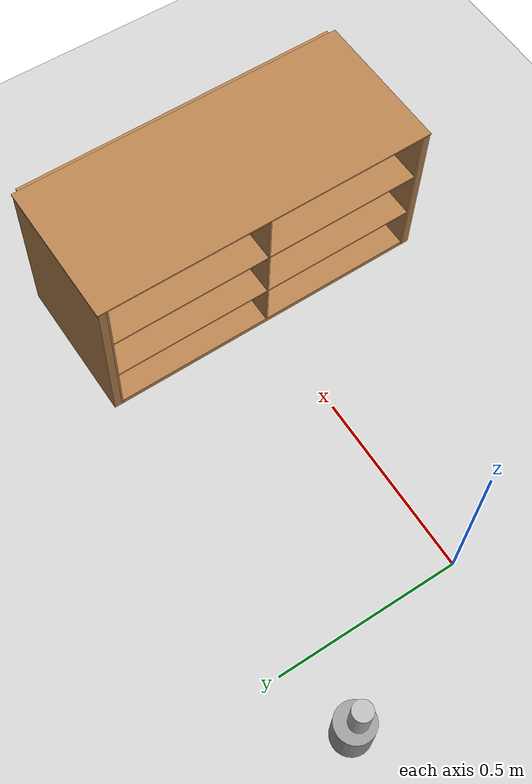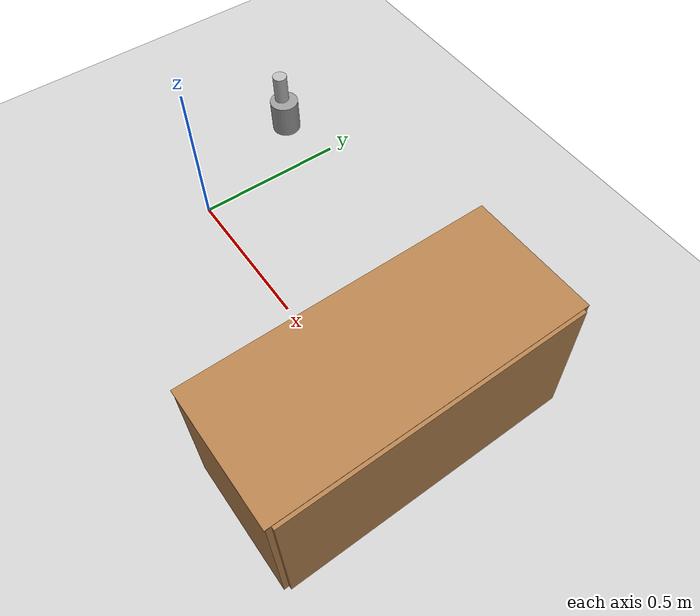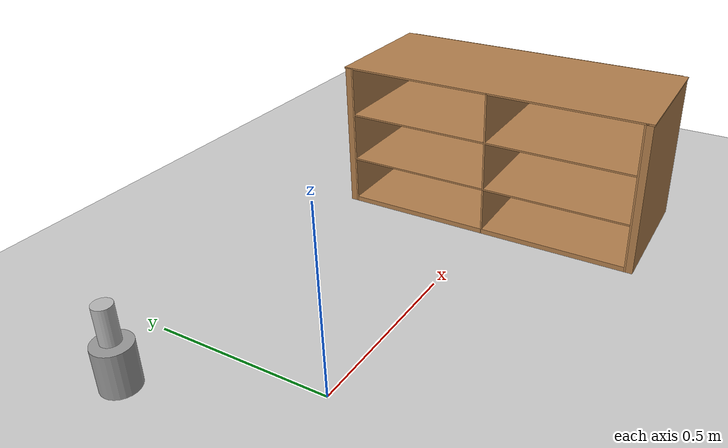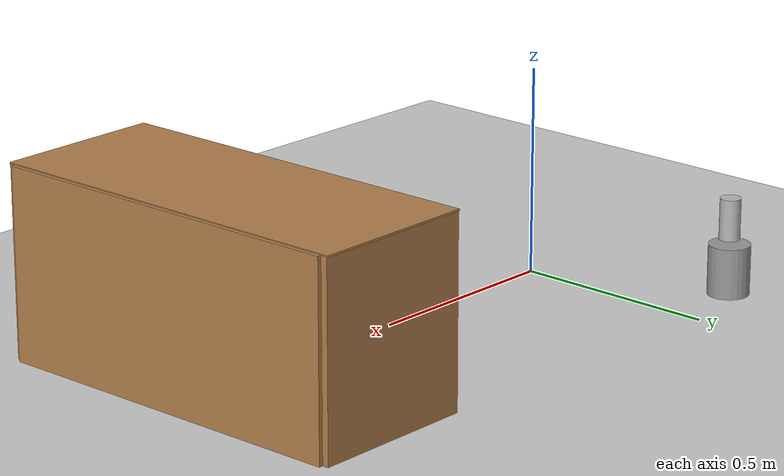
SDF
<sdf version="1.4">
  <world name="default">

    <!-- Global world -->
    <include>
      <uri>model://ground_plane</uri>
    </include>

    <!-- Global light source -->
    <include>
      <uri>model://sun</uri>
    </include>

    <physics type="ode">
      <real_time_update_rate>1000.0</real_time_update_rate>
      <max_step_size>0.001</max_step_size>
      <real_time_factor>1</real_time_factor>
      <ode>
        <solver>
          <type>quick</type>
          <iters>150</iters>
          <precon_iters>0</precon_iters>
          <sor>1.400000</sor>
          <use_dynamic_moi_rescaling>1</use_dynamic_moi_rescaling>
        </solver>
        <constraints>
          <cfm>0.00001</cfm>
          <erp>0.2</erp>
          <contact_max_correcting_vel>2000.000000</contact_max_correcting_vel>
          <contact_surface_layer>0.01000</contact_surface_layer>
        </constraints>
      </ode>
    </physics>

    <!-- Load world -->
    <include>
      <uri>model://turtlebot3_rooms3</uri>
    </include>

    <scene>
      <ambient>0.4 0.4 0.4 1</ambient>
      <background>0.7 0.7 0.7 1</background>
      <shadows>true</shadows>
    </scene>

    <gui fullscreen='0'>
      <camera name='user_camera'>
        <pose>0.8 2.0 12.0 0 1.5708 1.5708</pose>
        <view_controller>orbit</view_controller>
      </camera>
    </gui>

   <light name='user_spot_light_0' type='spot'>
      <pose frame=''>0 -4.5 1.373 1.65 -0 0</pose>
      <diffuse>0.5 0.5 0.5 1</diffuse>
      <specular>0.1 0.1 0.1 1</specular>
      <direction>0 0 -1</direction>
      <attenuation>
        <range>20</range>
        <constant>0.5</constant>
        <linear>0.01</linear>
        <quadratic>0.001</quadratic>
      </attenuation>
      <cast_shadows>0</cast_shadows>
      <spot>
        <inner_angle>0.6</inner_angle>
        <outer_angle>1</outer_angle>
        <falloff>1</falloff>
      </spot>
    </light>

  </world>
</sdf>

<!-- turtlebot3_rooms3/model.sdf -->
<sdf version='1.6'>
  <model name='turtlebot3_rooms3'>
    <link name='link_1'>
      <pose frame=''>-0.19418 0.435932 0.02 0 -0 0</pose>
      <inertial>
        <mass>1</mass>
        <inertia>
          <ixx>0.145833</ixx>
          <ixy>0</ixy>
          <ixz>0</ixz>
          <iyy>0.145833</iyy>
          <iyz>0</iyz>
          <izz>0.125</izz>
        </inertia>
      </inertial>
      <self_collide>0</self_collide>
      <kinematic>0</kinematic>
      <visual name='visual'>
        <pose frame=''>0 0 0 0 -0 0</pose>
        <geometry>
          <cylinder>
            <radius>0.05</radius>
            <length>0.2</length>
          </cylinder>
        </geometry>
        <material>
          <lighting>1</lighting>
          <script>
            <uri>file://media/materials/scripts/gazebo.material</uri>
            <name>Gazebo/Grey</name>
          </script>
          <shader type='pixel'/>
          <ambient>0.3 0.3 0.3 1</ambient>
          <diffuse>0.7 0.7 0.7 1</diffuse>
          <specular>0.01 0.01 0.01 1</specular>
          <emissive>0 0 0 1</emissive>
        </material>
        <transparency>0</transparency>
        <cast_shadows>1</cast_shadows>
      </visual>
      <collision name='collision'>
        <laser_retro>0</laser_retro>
        <max_contacts>10</max_contacts>
        <pose frame=''>0 0 0 0 -0 0</pose>
        <geometry>
          <cylinder>
            <radius>0.05</radius>
            <length>0.2</length>
          </cylinder>
        </geometry>
        <surface>
          <friction>
            <ode>
              <mu>1</mu>
              <mu2>1</mu2>
              <fdir1>0 0 0</fdir1>
              <slip1>0</slip1>
              <slip2>0</slip2>
            </ode>
            <torsional>
              <coefficient>1</coefficient>
              <patch_radius>0</patch_radius>
              <surface_radius>0</surface_radius>
              <use_patch_radius>1</use_patch_radius>
              <ode>
                <slip>0</slip>
              </ode>
            </torsional>
          </friction>
          <bounce>
            <restitution_coefficient>0</restitution_coefficient>
            <threshold>1e+06</threshold>
          </bounce>
          <contact>
            <collide_without_contact>0</collide_without_contact>
            <collide_without_contact_bitmask>1</collide_without_contact_bitmask>
            <collide_bitmask>1</collide_bitmask>
            <ode>
              <soft_cfm>0</soft_cfm>
              <soft_erp>0.2</soft_erp>
              <kp>1e+13</kp>
              <kd>1</kd>
              <max_vel>0.01</max_vel>
              <min_depth>0</min_depth>
            </ode>
            <bullet>
              <split_impulse>1</split_impulse>
              <split_impulse_penetration_threshold>-0.01</split_impulse_penetration_threshold>
              <soft_cfm>0</soft_cfm>
              <soft_erp>0.2</soft_erp>
              <kp>1e+13</kp>
              <kd>1</kd>
            </bullet>
          </contact>
        </surface>
      </collision>
      <static>1</static>
    </link>
    <model name='bookshelf_i_0'>
      <link name='link'>
        <pose frame=''>0 0 0 0 0 -1.56022</pose>
        <inertial>
          <mass>1</mass>
        </inertial>
        <self_collide>0</self_collide>
        <kinematic>0</kinematic>
        <visual name='right_side'>
          <pose frame=''>-0.455 -0.195 0.225 0 -0 0</pose>
          <geometry>
            <box>
              <size>0.02 0.4 0.45</size>
            </box>
          </geometry>
          <material>
            <script>
              <uri>file://media/materials/scripts/gazebo.material</uri>
              <name>Gazebo/Wood</name>
            </script>
            <shader type='pixel'/>
            <ambient>1 1 1 1</ambient>
            <diffuse>1 1 1 1</diffuse>
            <specular>0 0 0 1</specular>
            <emissive>0 0 0 1</emissive>
          </material>
          <transparency>0</transparency>
          <cast_shadows>1</cast_shadows>
        </visual>
        <visual name='left_side_inner'>
          <pose frame=''>0.4425 -0.195 0.225 0 -0 0</pose>
          <geometry>
            <box>
              <size>0.005 0.4 0.45</size>
            </box>
          </geometry>
          <material>
            <script>
              <uri>file://media/materials/scripts/gazebo.material</uri>
              <name>Gazebo/Wood</name>
            </script>
            <shader type='pixel'/>
            <ambient>1 1 1 1</ambient>
            <diffuse>1 1 1 1</diffuse>
            <specular>0.2 0.2 0.2 1</specular>
            <emissive>0 0 0 1</emissive>
          </material>
          <transparency>0</transparency>
          <cast_shadows>1</cast_shadows>
        </visual>
        <visual name='bottom'>
          <pose frame=''>0 -0.195 0.0075 0 -0 0</pose>
          <geometry>
            <box>
              <size>0.88 0.4 0.015</size>
            </box>
          </geometry>
          <material>
            <script>
              <uri>file://media/materials/scripts/gazebo.material</uri>
              <name>Gazebo/Wood</name>
            </script>
            <shader type='pixel'/>
            <ambient>1 1 1 1</ambient>
            <diffuse>1 1 1 1</diffuse>
            <specular>0.2 0.2 0.2 1</specular>
            <emissive>0 0 0 1</emissive>
          </material>
          <transparency>0</transparency>
          <cast_shadows>1</cast_shadows>
        </visual>
        <visual name='low_shelf'>
          <pose frame=''>0 -0.195 0.15 0 -0 0</pose>
          <geometry>
            <box>
              <size>0.88 0.4 0.005</size>
            </box>
          </geometry>
          <material>
            <script>
              <uri>file://media/materials/scripts/gazebo.material</uri>
              <name>Gazebo/Wood</name>
            </script>
            <shader type='pixel'/>
            <ambient>1 1 1 1</ambient>
            <diffuse>1 1 1 1</diffuse>
            <specular>0.2 0.2 0.2 1</specular>
            <emissive>0 0 0 1</emissive>
          </material>
          <transparency>0</transparency>
          <cast_shadows>1</cast_shadows>
        </visual>
        <visual name='back'>
          <pose frame=''>0 0.01 0.225 0 -0 0</pose>
          <geometry>
            <box>
              <size>0.9 0.01 0.45</size>
            </box>
          </geometry>
          <material>
            <script>
              <uri>file://media/materials/scripts/gazebo.material</uri>
              <name>Gazebo/Wood</name>
            </script>
            <shader type='pixel'/>
            <ambient>1 1 1 1</ambient>
            <diffuse>1 1 1 1</diffuse>
            <specular>0.2 0.2 0.2 1</specular>
            <emissive>0 0 0 1</emissive>
          </material>
          <transparency>0</transparency>
          <cast_shadows>1</cast_shadows>
        </visual>
        <visual name='top'>
          <pose frame=''>0 -0.195 0.45 0 -0 0</pose>
          <geometry>
            <box>
              <size>0.935 0.4 0.005</size>
            </box>
          </geometry>
          <material>
            <script>
              <uri>file://media/materials/scripts/gazebo.material</uri>
              <name>Gazebo/Wood</name>
            </script>
            <shader type='pixel'/>
            <ambient>1 1 1 1</ambient>
            <diffuse>1 1 1 1</diffuse>
            <specular>0.2 0.2 0.2 1</specular>
            <emissive>0 0 0 1</emissive>
          </material>
          <transparency>0</transparency>
          <cast_shadows>1</cast_shadows>
        </visual>
        <visual name='right_side_inner'>
          <pose frame=''>-0.4425 -0.195 0.225 0 -0 0</pose>
          <geometry>
            <box>
              <size>0.005 0.4 0.45</size>
            </box>
          </geometry>
          <material>
            <script>
              <uri>file://media/materials/scripts/gazebo.material</uri>
              <name>Gazebo/Wood</name>
            </script>
            <shader type='pixel'/>
            <ambient>1 1 1 1</ambient>
            <diffuse>1 1 1 1</diffuse>
            <specular>0.2 0.2 0.2 1</specular>
            <emissive>0 0 0 1</emissive>
          </material>
          <transparency>0</transparency>
          <cast_shadows>1</cast_shadows>
        </visual>
        <visual name='high_shelf'>
          <pose frame=''>0 -0.195 0.3 0 -0 0</pose>
          <geometry>
            <box>
              <size>0.88 0.4 0.005</size>
            </box>
          </geometry>
          <material>
            <script>
              <uri>file://media/materials/scripts/gazebo.material</uri>
              <name>Gazebo/Wood</name>
            </script>
            <shader type='pixel'/>
            <ambient>1 1 1 1</ambient>
            <diffuse>1 1 1 1</diffuse>
            <specular>0.2 0.2 0.2 1</specular>
            <emissive>0 0 0 1</emissive>
          </material>
          <transparency>0</transparency>
          <cast_shadows>1</cast_shadows>
        </visual>
        <visual name='left_side'>
          <pose frame=''>0.455 -0.195 0.225 0 -0 0</pose>
          <geometry>
            <box>
              <size>0.02 0.4 0.45</size>
            </box>
          </geometry>
          <material>
            <script>
              <uri>file://media/materials/scripts/gazebo.material</uri>
              <name>Gazebo/Wood</name>
            </script>
            <shader type='pixel'/>
            <ambient>1 1 1 1</ambient>
            <diffuse>1 1 1 1</diffuse>
            <specular>0 0 0 1</specular>
            <emissive>0 0 0 1</emissive>
          </material>
          <transparency>0</transparency>
          <cast_shadows>1</cast_shadows>
        </visual>
        <visual name='right_side_center'>
          <pose frame=''>0 -0.195 0.225 0 -0 0</pose>
          <geometry>
            <box>
              <size>0.005 0.4 0.45</size>
            </box>
          </geometry>
          <material>
            <script>
              <uri>file://media/materials/scripts/gazebo.material</uri>
              <name>Gazebo/Wood</name>
            </script>
            <shader type='pixel'/>
            <ambient>1 1 1 1</ambient>
            <diffuse>1 1 1 1</diffuse>
            <specular>0.2 0.2 0.2 1</specular>
            <emissive>0 0 0 1</emissive>
          </material>
          <transparency>0</transparency>
          <cast_shadows>1</cast_shadows>
        </visual>
        <collision name='top'>
          <laser_retro>0</laser_retro>
          <max_contacts>10</max_contacts>
          <pose frame=''>0 -0.195 0.45 0 -0 0</pose>
          <geometry>
            <box>
              <size>0.935 0.4 0.005</size>
            </box>
          </geometry>
          <surface>
            <friction>
              <ode>
                <mu>1</mu>
                <mu2>1</mu2>
                <fdir1>0 0 0</fdir1>
                <slip1>0</slip1>
                <slip2>0</slip2>
              </ode>
              <torsional>
                <coefficient>1</coefficient>
                <patch_radius>0</patch_radius>
                <surface_radius>0</surface_radius>
                <use_patch_radius>1</use_patch_radius>
                <ode>
                  <slip>0</slip>
                </ode>
              </torsional>
            </friction>
            <bounce>
              <restitution_coefficient>0</restitution_coefficient>
              <threshold>1e+06</threshold>
            </bounce>
            <contact>
              <collide_without_contact>0</collide_without_contact>
              <collide_without_contact_bitmask>1</collide_without_contact_bitmask>
              <collide_bitmask>1</collide_bitmask>
              <ode>
                <soft_cfm>0</soft_cfm>
                <soft_erp>0.2</soft_erp>
                <kp>1e+13</kp>
                <kd>1</kd>
                <max_vel>0.01</max_vel>
                <min_depth>0</min_depth>
              </ode>
              <bullet>
                <split_impulse>1</split_impulse>
                <split_impulse_penetration_threshold>-0.01</split_impulse_penetration_threshold>
                <soft_cfm>0</soft_cfm>
                <soft_erp>0.2</soft_erp>
                <kp>1e+13</kp>
                <kd>1</kd>
              </bullet>
            </contact>
          </surface>
        </collision>
        <collision name='right_side_center'>
          <laser_retro>0</laser_retro>
          <max_contacts>10</max_contacts>
          <pose frame=''>0 -0.195 0.225 0 -0 0</pose>
          <geometry>
            <box>
              <size>0.005 0.4 0.45</size>
            </box>
          </geometry>
          <surface>
            <friction>
              <ode>
                <mu>1</mu>
                <mu2>1</mu2>
                <fdir1>0 0 0</fdir1>
                <slip1>0</slip1>
                <slip2>0</slip2>
              </ode>
              <torsional>
                <coefficient>1</coefficient>
                <patch_radius>0</patch_radius>
                <surface_radius>0</surface_radius>
                <use_patch_radius>1</use_patch_radius>
                <ode>
                  <slip>0</slip>
                </ode>
              </torsional>
            </friction>
            <bounce>
              <restitution_coefficient>0</restitution_coefficient>
              <threshold>1e+06</threshold>
            </bounce>
            <contact>
              <collide_without_contact>0</collide_without_contact>
              <collide_without_contact_bitmask>1</collide_without_contact_bitmask>
              <collide_bitmask>1</collide_bitmask>
              <ode>
                <soft_cfm>0</soft_cfm>
                <soft_erp>0.2</soft_erp>
                <kp>1e+13</kp>
                <kd>1</kd>
                <max_vel>0.01</max_vel>
                <min_depth>0</min_depth>
              </ode>
              <bullet>
                <split_impulse>1</split_impulse>
                <split_impulse_penetration_threshold>-0.01</split_impulse_penetration_threshold>
                <soft_cfm>0</soft_cfm>
                <soft_erp>0.2</soft_erp>
                <kp>1e+13</kp>
                <kd>1</kd>
              </bullet>
            </contact>
          </surface>
        </collision>
        <collision name='back'>
          <laser_retro>0</laser_retro>
          <max_contacts>10</max_contacts>
          <pose frame=''>0 0.01 0.225 0 -0 0</pose>
          <geometry>
            <box>
              <size>0.9 0.01 0.45</size>
            </box>
          </geometry>
          <surface>
            <friction>
              <ode>
                <mu>1</mu>
                <mu2>1</mu2>
                <fdir1>0 0 0</fdir1>
                <slip1>0</slip1>
                <slip2>0</slip2>
              </ode>
              <torsional>
                <coefficient>1</coefficient>
                <patch_radius>0</patch_radius>
                <surface_radius>0</surface_radius>
                <use_patch_radius>1</use_patch_radius>
                <ode>
                  <slip>0</slip>
                </ode>
              </torsional>
            </friction>
            <bounce>
              <restitution_coefficient>0</restitution_coefficient>
              <threshold>1e+06</threshold>
            </bounce>
            <contact>
              <collide_without_contact>0</collide_without_contact>
              <collide_without_contact_bitmask>1</collide_without_contact_bitmask>
              <collide_bitmask>1</collide_bitmask>
              <ode>
                <soft_cfm>0</soft_cfm>
                <soft_erp>0.2</soft_erp>
                <kp>1e+13</kp>
                <kd>1</kd>
                <max_vel>0.01</max_vel>
                <min_depth>0</min_depth>
              </ode>
              <bullet>
                <split_impulse>1</split_impulse>
                <split_impulse_penetration_threshold>-0.01</split_impulse_penetration_threshold>
                <soft_cfm>0</soft_cfm>
                <soft_erp>0.2</soft_erp>
                <kp>1e+13</kp>
                <kd>1</kd>
              </bullet>
            </contact>
          </surface>
        </collision>
        <collision name='right_side_inner'>
          <laser_retro>0</laser_retro>
          <max_contacts>10</max_contacts>
          <pose frame=''>-0.4425 -0.195 0.225 0 -0 0</pose>
          <geometry>
            <box>
              <size>0.005 0.4 0.45</size>
            </box>
          </geometry>
          <surface>
            <friction>
              <ode>
                <mu>1</mu>
                <mu2>1</mu2>
                <fdir1>0 0 0</fdir1>
                <slip1>0</slip1>
                <slip2>0</slip2>
              </ode>
              <torsional>
                <coefficient>1</coefficient>
                <patch_radius>0</patch_radius>
                <surface_radius>0</surface_radius>
                <use_patch_radius>1</use_patch_radius>
                <ode>
                  <slip>0</slip>
                </ode>
              </torsional>
            </friction>
            <bounce>
              <restitution_coefficient>0</restitution_coefficient>
              <threshold>1e+06</threshold>
            </bounce>
            <contact>
              <collide_without_contact>0</collide_without_contact>
              <collide_without_contact_bitmask>1</collide_without_contact_bitmask>
              <collide_bitmask>1</collide_bitmask>
              <ode>
                <soft_cfm>0</soft_cfm>
                <soft_erp>0.2</soft_erp>
                <kp>1e+13</kp>
                <kd>1</kd>
                <max_vel>0.01</max_vel>
                <min_depth>0</min_depth>
              </ode>
              <bullet>
                <split_impulse>1</split_impulse>
                <split_impulse_penetration_threshold>-0.01</split_impulse_penetration_threshold>
                <soft_cfm>0</soft_cfm>
                <soft_erp>0.2</soft_erp>
                <kp>1e+13</kp>
                <kd>1</kd>
              </bullet>
            </contact>
          </surface>
        </collision>
        <collision name='bottom'>
          <laser_retro>0</laser_retro>
          <max_contacts>10</max_contacts>
          <pose frame=''>0 -0.195 0.0075 0 -0 0</pose>
          <geometry>
            <box>
              <size>0.88 0.4 0.015</size>
            </box>
          </geometry>
          <surface>
            <friction>
              <ode>
                <mu>1</mu>
                <mu2>1</mu2>
                <fdir1>0 0 0</fdir1>
                <slip1>0</slip1>
                <slip2>0</slip2>
              </ode>
              <torsional>
                <coefficient>1</coefficient>
                <patch_radius>0</patch_radius>
                <surface_radius>0</surface_radius>
                <use_patch_radius>1</use_patch_radius>
                <ode>
                  <slip>0</slip>
                </ode>
              </torsional>
            </friction>
            <bounce>
              <restitution_coefficient>0</restitution_coefficient>
              <threshold>1e+06</threshold>
            </bounce>
            <contact>
              <collide_without_contact>0</collide_without_contact>
              <collide_without_contact_bitmask>1</collide_without_contact_bitmask>
              <collide_bitmask>1</collide_bitmask>
              <ode>
                <soft_cfm>0</soft_cfm>
                <soft_erp>0.2</soft_erp>
                <kp>1e+13</kp>
                <kd>1</kd>
                <max_vel>0.01</max_vel>
                <min_depth>0</min_depth>
              </ode>
              <bullet>
                <split_impulse>1</split_impulse>
                <split_impulse_penetration_threshold>-0.01</split_impulse_penetration_threshold>
                <soft_cfm>0</soft_cfm>
                <soft_erp>0.2</soft_erp>
                <kp>1e+13</kp>
                <kd>1</kd>
              </bullet>
            </contact>
          </surface>
        </collision>
        <collision name='low_shelf'>
          <laser_retro>0</laser_retro>
          <max_contacts>10</max_contacts>
          <pose frame=''>0 -0.195 0.15 0 -0 0</pose>
          <geometry>
            <box>
              <size>0.88 0.4 0.005</size>
            </box>
          </geometry>
          <surface>
            <friction>
              <ode>
                <mu>1</mu>
                <mu2>1</mu2>
                <fdir1>0 0 0</fdir1>
                <slip1>0</slip1>
                <slip2>0</slip2>
              </ode>
              <torsional>
                <coefficient>1</coefficient>
                <patch_radius>0</patch_radius>
                <surface_radius>0</surface_radius>
                <use_patch_radius>1</use_patch_radius>
                <ode>
                  <slip>0</slip>
                </ode>
              </torsional>
            </friction>
            <bounce>
              <restitution_coefficient>0</restitution_coefficient>
              <threshold>1e+06</threshold>
            </bounce>
            <contact>
              <collide_without_contact>0</collide_without_contact>
              <collide_without_contact_bitmask>1</collide_without_contact_bitmask>
              <collide_bitmask>1</collide_bitmask>
              <ode>
                <soft_cfm>0</soft_cfm>
                <soft_erp>0.2</soft_erp>
                <kp>1e+13</kp>
                <kd>1</kd>
                <max_vel>0.01</max_vel>
                <min_depth>0</min_depth>
              </ode>
              <bullet>
                <split_impulse>1</split_impulse>
                <split_impulse_penetration_threshold>-0.01</split_impulse_penetration_threshold>
                <soft_cfm>0</soft_cfm>
                <soft_erp>0.2</soft_erp>
                <kp>1e+13</kp>
                <kd>1</kd>
              </bullet>
            </contact>
          </surface>
        </collision>
        <collision name='high_shelf'>
          <laser_retro>0</laser_retro>
          <max_contacts>10</max_contacts>
          <pose frame=''>0 -0.195 0.3 0 -0 0</pose>
          <geometry>
            <box>
              <size>0.88 0.4 0.005</size>
            </box>
          </geometry>
          <surface>
            <friction>
              <ode>
                <mu>1</mu>
                <mu2>1</mu2>
                <fdir1>0 0 0</fdir1>
                <slip1>0</slip1>
                <slip2>0</slip2>
              </ode>
              <torsional>
                <coefficient>1</coefficient>
                <patch_radius>0</patch_radius>
                <surface_radius>0</surface_radius>
                <use_patch_radius>1</use_patch_radius>
                <ode>
                  <slip>0</slip>
                </ode>
              </torsional>
            </friction>
            <bounce>
              <restitution_coefficient>0</restitution_coefficient>
              <threshold>1e+06</threshold>
            </bounce>
            <contact>
              <collide_without_contact>0</collide_without_contact>
              <collide_without_contact_bitmask>1</collide_without_contact_bitmask>
              <collide_bitmask>1</collide_bitmask>
              <ode>
                <soft_cfm>0</soft_cfm>
                <soft_erp>0.2</soft_erp>
                <kp>1e+13</kp>
                <kd>1</kd>
                <max_vel>0.01</max_vel>
                <min_depth>0</min_depth>
              </ode>
              <bullet>
                <split_impulse>1</split_impulse>
                <split_impulse_penetration_threshold>-0.01</split_impulse_penetration_threshold>
                <soft_cfm>0</soft_cfm>
                <soft_erp>0.2</soft_erp>
                <kp>1e+13</kp>
                <kd>1</kd>
              </bullet>
            </contact>
          </surface>
        </collision>
        <collision name='left_side_inner'>
          <laser_retro>0</laser_retro>
          <max_contacts>10</max_contacts>
          <pose frame=''>0.4425 -0.195 0.225 0 -0 0</pose>
          <geometry>
            <box>
              <size>0.005 0.4 0.45</size>
            </box>
          </geometry>
          <surface>
            <friction>
              <ode>
                <mu>1</mu>
                <mu2>1</mu2>
                <fdir1>0 0 0</fdir1>
                <slip1>0</slip1>
                <slip2>0</slip2>
              </ode>
              <torsional>
                <coefficient>1</coefficient>
                <patch_radius>0</patch_radius>
                <surface_radius>0</surface_radius>
                <use_patch_radius>1</use_patch_radius>
                <ode>
                  <slip>0</slip>
                </ode>
              </torsional>
            </friction>
            <bounce>
              <restitution_coefficient>0</restitution_coefficient>
              <threshold>1e+06</threshold>
            </bounce>
            <contact>
              <collide_without_contact>0</collide_without_contact>
              <collide_without_contact_bitmask>1</collide_without_contact_bitmask>
              <collide_bitmask>1</collide_bitmask>
              <ode>
                <soft_cfm>0</soft_cfm>
                <soft_erp>0.2</soft_erp>
                <kp>1e+13</kp>
                <kd>1</kd>
                <max_vel>0.01</max_vel>
                <min_depth>0</min_depth>
              </ode>
              <bullet>
                <split_impulse>1</split_impulse>
                <split_impulse_penetration_threshold>-0.01</split_impulse_penetration_threshold>
                <soft_cfm>0</soft_cfm>
                <soft_erp>0.2</soft_erp>
                <kp>1e+13</kp>
                <kd>1</kd>
              </bullet>
            </contact>
          </surface>
        </collision>
        <collision name='right_side'>
          <laser_retro>0</laser_retro>
          <max_contacts>10</max_contacts>
          <pose frame=''>-0.455 -0.195 0.225 0 -0 0</pose>
          <geometry>
            <box>
              <size>0.02 0.4 0.45</size>
            </box>
          </geometry>
          <surface>
            <friction>
              <ode>
                <mu>1</mu>
                <mu2>1</mu2>
                <fdir1>0 0 0</fdir1>
                <slip1>0</slip1>
                <slip2>0</slip2>
              </ode>
              <torsional>
                <coefficient>1</coefficient>
                <patch_radius>0</patch_radius>
                <surface_radius>0</surface_radius>
                <use_patch_radius>1</use_patch_radius>
                <ode>
                  <slip>0</slip>
                </ode>
              </torsional>
            </friction>
            <bounce>
              <restitution_coefficient>0</restitution_coefficient>
              <threshold>1e+06</threshold>
            </bounce>
            <contact>
              <collide_without_contact>0</collide_without_contact>
              <collide_without_contact_bitmask>1</collide_without_contact_bitmask>
              <collide_bitmask>1</collide_bitmask>
              <ode>
                <soft_cfm>0</soft_cfm>
                <soft_erp>0.2</soft_erp>
                <kp>1e+13</kp>
                <kd>1</kd>
                <max_vel>0.01</max_vel>
                <min_depth>0</min_depth>
              </ode>
              <bullet>
                <split_impulse>1</split_impulse>
                <split_impulse_penetration_threshold>-0.01</split_impulse_penetration_threshold>
                <soft_cfm>0</soft_cfm>
                <soft_erp>0.2</soft_erp>
                <kp>1e+13</kp>
                <kd>1</kd>
              </bullet>
            </contact>
          </surface>
        </collision>
        <collision name='left_side'>
          <laser_retro>0</laser_retro>
          <max_contacts>10</max_contacts>
          <pose frame=''>0.455 -0.195 0.225 0 -0 0</pose>
          <geometry>
            <box>
              <size>0.02 0.4 0.45</size>
            </box>
          </geometry>
          <surface>
            <friction>
              <ode>
                <mu>1</mu>
                <mu2>1</mu2>
                <fdir1>0 0 0</fdir1>
                <slip1>0</slip1>
                <slip2>0</slip2>
              </ode>
              <torsional>
                <coefficient>1</coefficient>
                <patch_radius>0</patch_radius>
                <surface_radius>0</surface_radius>
                <use_patch_radius>1</use_patch_radius>
                <ode>
                  <slip>0</slip>
                </ode>
              </torsional>
            </friction>
            <bounce>
              <restitution_coefficient>0</restitution_coefficient>
              <threshold>1e+06</threshold>
            </bounce>
            <contact>
              <collide_without_contact>0</collide_without_contact>
              <collide_without_contact_bitmask>1</collide_without_contact_bitmask>
              <collide_bitmask>1</collide_bitmask>
              <ode>
                <soft_cfm>0</soft_cfm>
                <soft_erp>0.2</soft_erp>
                <kp>1e+13</kp>
                <kd>1</kd>
                <max_vel>0.01</max_vel>
                <min_depth>0</min_depth>
              </ode>
              <bullet>
                <split_impulse>1</split_impulse>
                <split_impulse_penetration_threshold>-0.01</split_impulse_penetration_threshold>
                <soft_cfm>0</soft_cfm>
                <soft_erp>0.2</soft_erp>
                <kp>1e+13</kp>
                <kd>1</kd>
              </bullet>
            </contact>
          </surface>
        </collision>
      </link>
      <static>1</static>
      <allow_auto_disable>1</allow_auto_disable>
      <pose frame=''>1.19738 0.00541 0 0 -0 0</pose>
    </model>
    <model name='small_beer'>
      <link name='link'>
        <pose frame=''>0.2 0 0 0 -0 1.775</pose>
        <inertial>
          <mass>0.001</mass>
          <inertia>
            <ixx>4.7583e-05</ixx>
            <ixy>0</ixy>
            <ixz>0</ixz>
            <iyy>4.7583e-05</iyy>
            <iyz>0</iyz>
            <izz>3.125e-06</izz>
          </inertia>
        </inertial>
        <collision name='collision'>
          <geometry>
            <cylinder>
              <radius>0.025</radius>
	      <length>0.1</length>
            </cylinder>
          </geometry>
          <surface>
            <friction>
              <ode>
                <mu>1e+06</mu>
                <mu2>10000</mu2>
              </ode>
              <torsional>
                <ode/>
              </torsional>
            </friction>
            <contact>
              <ode>
                <kp>1e+06</kp>
                <kd>100</kd>
                <max_vel>1</max_vel>
                <min_depth>0.002</min_depth>
              </ode>
            </contact>
            <bounce/>
          </surface>
          <max_contacts>10</max_contacts>
        </collision>
        <visual name='visual'>
          <geometry>
            <cylinder>
              <radius>0.025</radius>
	      <length>0.1</length>
            </cylinder>
          </geometry>
          <material>
            <script>
              <uri>model://turtlebot3_rooms3/small_beer/materials/scripts</uri>
              <uri>model://turtlebot3_rooms3/small_beer/materials/textures</uri>
              <name>Beer/Diffuse</name>
            </script>
          </material>
        </visual>
        <self_collide>0</self_collide>
        <kinematic>0</kinematic>
      </link>
      <pose frame=''>0.001782 0.431131 0.18 0 -0 3.14</pose>
    </model>
    <static>1</static>
    <allow_auto_disable>0</allow_auto_disable>
  </model>
</sdf>
